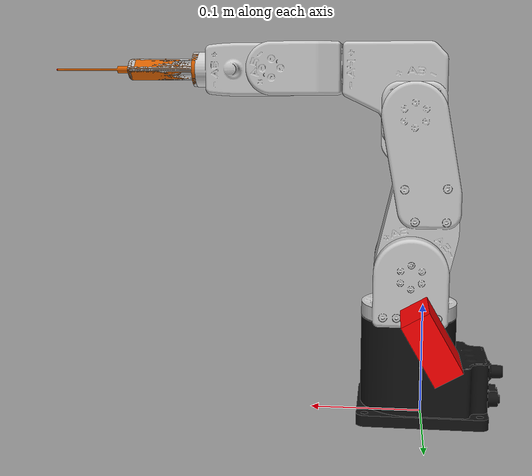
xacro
<?xml version="1.0"?>
<robot name="meca500_robot_tool" xmlns:xacro="http://www.ros.org/wiki/xacro">

  <!-- Existing Meca500 Robot Description and tool -->
  <xacro:include filename="meca_500_r3.urdf.xacro"/>
  <xacro:include filename="camara.xacro"/>

    <!-- Attach the needle_holder to meca_axis_6_joint -->
  <joint name="meca_to_holder" type="fixed">
      <parent link="meca_axis_6_link"/>
      <child link="needle_holder"/>
      <origin xyz="0 0 0" rpy="0 0 0"/>
  </joint>

  <link name="needle_holder">
    <visual>
      <origin rpy="0 0 0" xyz="0 0 0"/>
      <geometry>
        <mesh filename="package://mecademic_description/meshes/dummy_needle_tool.dae"/>
      </geometry>
    </visual>
    <collision>
      <origin rpy="0 0 0" xyz="0 0 0"/>
      <geometry>
        <mesh filename="package://mecademic_description/meshes/dummy_needle_tool.stl"/>
      </geometry>
    </collision>
  </link>

  <joint name="needle_to_tip" type="fixed">
    <parent link="needle_holder"/>
    <child link="needle_tip"/>
    <origin rpy="0 0 0" xyz="0.1284 0 0"/>
  </joint>
  <link name="needle_tip">
    <visual>
      <origin rpy="0 0 0" xyz="0 0 0"/>
      <geometry>
        <sphere radius=".001"/>
      </geometry>
      <material name="red">
            <color rgba="1.0 0.0 0.0 1.0"/>
      </material>
    </visual>
    <collision>
      <origin rpy="0 0 0" xyz="0 0 0"/>
      <geometry>
        <sphere radius=".001"/>
      </geometry>
    </collision>
  </link>

</robot>

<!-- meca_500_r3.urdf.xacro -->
<robot xmlns:xacro="http://www.ros.org/wiki/xacro" name="meca_500_r3">
    <xacro:arg name="initial_positions_file" default="initial_positions.yaml" />

    <!-- Import meca_500_r3 urdf file -->
    <xacro:include filename="$(find mecademic_description)/urdf/meca_500_r3_with_needle.urdf.xacro" />

    <!-- Import control_xacro -->
    <xacro:include filename="meca_500_r3.ros2_control.xacro" />

    <xacro:meca_500_r3_ros2_control name="FakeSystem" initial_positions_file="$(arg initial_positions_file)"/>

</robot>

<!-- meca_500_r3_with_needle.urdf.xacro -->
<robot name="meca_500_r3" xmlns:xacro="http://www.ros.org/wiki/xacro">

  <xacro:property name="holder_len" value="${0.060}"/>
  <xacro:property name="needle_len" value="${0.020}"/>
  <xacro:property name="needle_rad" value="${0.0002}"/>
  <xacro:property name="tcp_offset" value="${holder_len + needle_len}"/>

  <!-- STL in mm? Then use 0.001. If STL is already in meters, use 1 1 1. -->
  <xacro:property name="mesh_scale" value="0.001 0.001 0.001"/>

  <xacro:property name="holder_xyz" value="0 0 0"/>
  <xacro:property name="holder_rpy" value="0 1.57079632679 0"/>

  <!-- Holder mesh path -->
  <xacro:property name="holder_visual_mesh" value="package://mecademic_description/meshes/holder.stl"/>

  <!-- Optional collision mesh -->
  <xacro:property name="holder_collision_mesh" value=""/>

  <!-- ==========================================
       BASE ROBOT
       ========================================== -->

  <!-- Base link is the center of the robot's bottom plate -->
  <link name="meca_base_link">
    <visual>
      <origin xyz="0 0 0" rpy="0 0 0"/>
      <geometry>
        <mesh filename="package://mecademic_description/meshes/meca_500_r3_base.dae"/>
      </geometry>
    </visual>
    <collision>
      <origin xyz="0 0 0" rpy="0 0 0"/>
      <geometry>
        <mesh filename="package://mecademic_description/meshes/meca_500_r3_base_collision.stl"/>
      </geometry>
    </collision>
  </link>

  <!-- Joint 1 -->
  <link name="meca_axis_1_link">
    <visual>
      <origin xyz="0 0 0" rpy="0 0 0"/>
      <geometry>
        <mesh filename="package://mecademic_description/meshes/meca_500_r3_j1.dae"/>
      </geometry>
    </visual>
    <collision>
      <origin xyz="0 0 0" rpy="0 0 0"/>
      <geometry>
        <mesh filename="package://mecademic_description/meshes/meca_500_r3_j1_collision.stl"/>
      </geometry>
    </collision>
  </link>

  <joint name="meca_axis_1_joint" type="revolute">
    <origin xyz="0.012498 0 0.091" rpy="0 0 0"/>
    <parent link="meca_base_link"/>
    <child link="meca_axis_1_link"/>
    <axis xyz="0 0 1"/>
    <limit effort="10.0" velocity="2.61799" lower="-3.05433" upper="3.05433"/>
  </joint>

  <!-- Joint 2 -->
  <link name="meca_axis_2_link">
    <visual>
      <origin xyz="0 0 0" rpy="0 0 0"/>
      <geometry>
        <mesh filename="package://mecademic_description/meshes/meca_500_r3_j2.dae"/>
      </geometry>
    </visual>
    <collision>
      <origin xyz="0 0 0" rpy="0 0 0"/>
      <geometry>
        <mesh filename="package://mecademic_description/meshes/meca_500_r3_j2_collision.stl"/>
      </geometry>
    </collision>
  </link>

  <joint name="meca_axis_2_joint" type="revolute">
    <origin xyz="0 0 0.044" rpy="0 0 0"/>
    <parent link="meca_axis_1_link"/>
    <child link="meca_axis_2_link"/>
    <axis xyz="0 1 0"/>
    <limit effort="10.0" velocity="2.61799" lower="-1.22173048" upper="1.5708"/>
  </joint>

  <!-- Joint 3 -->
  <link name="meca_axis_3_link">
    <visual>
      <origin xyz="0 0 0" rpy="0 0 0"/>
      <geometry>
        <mesh filename="package://mecademic_description/meshes/meca_500_r3_j3.dae"/>
      </geometry>
    </visual>
    <collision>
      <origin xyz="0 0 0" rpy="0 0 0"/>
      <geometry>
        <mesh filename="package://mecademic_description/meshes/meca_500_r3_j3_collision.stl"/>
      </geometry>
    </collision>
  </link>

  <joint name="meca_axis_3_joint" type="revolute">
    <origin xyz="0 0 0.135" rpy="0 0 0"/>
    <parent link="meca_axis_2_link"/>
    <child link="meca_axis_3_link"/>
    <axis xyz="0 1 0"/>
    <limit effort="10.0" velocity="3.14159" lower="-2.35619" upper="1.22173048"/>
  </joint>

  <!-- Joint 4 -->
  <link name="meca_axis_4_link">
    <visual>
      <origin xyz="0 0 0" rpy="0 0 0"/>
      <geometry>
        <mesh filename="package://mecademic_description/meshes/meca_500_r3_j4.dae"/>
      </geometry>
    </visual>
    <collision>
      <origin xyz="0 0 0" rpy="0 0 0"/>
      <geometry>
        <mesh filename="package://mecademic_description/meshes/meca_500_r3_j4_collision.stl"/>
      </geometry>
    </collision>
  </link>

  <joint name="meca_axis_4_joint" type="revolute">
    <origin xyz="0 0 0.038" rpy="0 0 0"/>
    <parent link="meca_axis_3_link"/>
    <child link="meca_axis_4_link"/>
    <axis xyz="1 0 0"/>
    <limit effort="10.0" velocity="5.23599" lower="-2.96706" upper="2.96706"/>
  </joint>

  <!-- Joint 5 -->
  <link name="meca_axis_5_link">
    <visual>
      <origin xyz="0 0 0" rpy="0 0 0"/>
      <geometry>
        <mesh filename="package://mecademic_description/meshes/meca_500_r3_j5.dae"/>
      </geometry>
    </visual>
    <collision>
      <origin xyz="0 0 0" rpy="0 0 0"/>
      <geometry>
        <mesh filename="package://mecademic_description/meshes/meca_500_r3_j5_collision.stl"/>
      </geometry>
    </collision>
  </link>

  <joint name="meca_axis_5_joint" type="revolute">
    <origin xyz="0.12 0 0" rpy="0 0 0"/>
    <parent link="meca_axis_4_link"/>
    <child link="meca_axis_5_link"/>
    <axis xyz="0 1 0"/>
    <limit effort="10.0" velocity="5.23599" lower="-2.00713" upper="2.00713"/>
  </joint>

  <!-- Joint 6 / flange -->
  <link name="meca_axis_6_link">
    <visual>
      <origin xyz="0 0 0" rpy="0 0 0"/>
      <geometry>
        <mesh filename="package://mecademic_description/meshes/meca_500_r3_j6.dae"/>
      </geometry>
    </visual>
    <collision>
      <origin xyz="0 0 0" rpy="0 0 0"/>
      <geometry>
        <mesh filename="package://mecademic_description/meshes/meca_500_r3_j6_collision.stl"/>
      </geometry>
    </collision>
  </link>

  <joint name="meca_axis_6_joint" type="revolute">
    <origin xyz="0.07 0 0" rpy="0 0 0"/>
    <parent link="meca_axis_5_link"/>
    <child link="meca_axis_6_link"/>
    <axis xyz="1 0 0"/>
    <limit effort="10.0" velocity="8.72665" lower="-3.14159" upper="3.14159"/>
  </joint>

  <!-- ==========================================
       HOLDER + NEEDLE + TCP
       ========================================== -->

  <link name="meca_frf_link"/>

  <joint name="meca_frf_fixed" type="fixed">
    <parent link="meca_axis_6_link"/>
    <child link="meca_frf_link"/>
    <origin xyz="0 0 0" rpy="0 0 0"/>
  </joint>

  <!-- Holder link attached to the Meca FRF.
       holder_link +X is the physical approach direction.
       Collision box and inertia are centered at (holder_len/2, 0, 0). -->
  <link name="holder_link">

    <!-- Holder visual mesh.
         If holder.stl was built with +Z as approach, add rpy="0 -1.57079632679 0"
         to the holder_rpy xacro property at the top to fix the visual orientation. -->
    <visual>
      <origin xyz="${holder_xyz}" rpy="${holder_rpy}"/>
      <geometry>
        <mesh filename="${holder_visual_mesh}" scale="${mesh_scale}"/>
      </geometry>
      <material name="holder_gray">
        <color rgba="0.7 0.7 0.7 1.0"/>
      </material>
    </visual>

    <!-- Holder collision: box extending holder_len along +X from the flange. -->
    <collision>
      <origin xyz="${holder_len/2.0} 0 0" rpy="0 0 0"/>
      <geometry>
        <box size="${holder_len} 0.02 0.02"/>
      </geometry>
    </collision>

    <inertial>
      <origin xyz="${holder_len/2.0} 0 0" rpy="0 0 0"/>
      <mass value="0.03"/>
      <inertia ixx="1e-5" ixy="0" ixz="0" iyy="1e-5" iyz="0" izz="1e-5"/>
    </inertial>

  </link>

  <joint name="holder_fixed" type="fixed">
    <parent link="meca_frf_link"/>
    <child link="holder_link"/>
    <origin xyz="0 0 0" rpy="0 0 0"/>
  </joint>

  <link name="tool0_link">

    <visual>
      <origin xyz="0 0 ${needle_len/2.0}" rpy="0 0 0"/>
      <geometry>
        <cylinder length="${needle_len}" radius="${needle_rad}"/>
      </geometry>
      <material name="needle_steel">
        <color rgba="0.75 0.75 0.8 1.0"/>
      </material>
    </visual>

    <collision>
      <origin xyz="0 0 ${needle_len/2.0}" rpy="0 0 0"/>
      <geometry>
        <!-- Slightly enlarged collision radius for safer planning -->
        <cylinder length="${needle_len}" radius="${needle_rad*1.3}"/>
      </geometry>
    </collision>

    <inertial>
      <origin xyz="0 0 ${needle_len/2.0}" rpy="0 0 0"/>
      <mass value="0.005"/>
      <inertia ixx="1e-7" ixy="0" ixz="0" iyy="1e-7" iyz="0" izz="1e-7"/>
    </inertial>

  </link>

  <joint name="needle_fixed" type="fixed">
    <parent link="holder_link"/>
    <child link="tool0_link"/>
    <origin xyz="${holder_len} 0 0" rpy="0 1.57079632679 0"/>
  </joint>

  <link name="tcp_link"/>

  <joint name="tcp_fixed" type="fixed">
    <parent link="tool0_link"/>
    <child link="tcp_link"/>
    <!-- xyz: needle_len (20 mm) along tool0_link +Z (= approach direction).
         rpy: Ry(-90°) restores tcp_link frame to match meca_axis_6_link (+X = approach). -->
    <origin xyz="0 0 ${needle_len}" rpy="0 -1.57079632679 0"/>
  </joint>

</robot>

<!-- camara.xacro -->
<robot xmlns:xacro="http://www.ros.org/wiki/xacro" >

    <joint name="camera_joint" type="fixed">
        <parent link="meca_base_link"/>
        <child link="camera_link"/>
        <origin xyz="0 0.15 0.11" rpy="0 ${pi/6} 0"/>
    </joint>

    <link name="camera_link">
        <visual>
            <geometry>
                <box size="0.023 0.05 0.05"/>
            </geometry>
            <material name="red"/>
        </visual>
        <collision>
            <origin rpy="0 0 0" xyz="0 0 0"/>
            <geometry>
                <box size="0.023 0.05 0.05"/>
            </geometry>
        </collision>
    </link>

    <joint name="camera_optical_joint" type="fixed">
        <parent link="camera_link"/>
        <child link="camera_link_optical"/>
        <origin xyz="0 0 0" rpy="${-pi/2} 0 ${-pi/2}"/>
    </joint>

    <link name="camera_link_optical"></link>

    <gazebo reference="camera_link">
        <material>Gazebo/Red</material>

        <sensor name="camera" type="camera">
            <pose> 0 0 0 0 0 0 </pose>
            <visualize>true</visualize>
            <update_rate>10</update_rate>
            <camera>
                <horizontal_fov>1.089</horizontal_fov>
                <image>
                    <format>R8G8B8</format>
                    <width>640</width>
                    <height>480</height>
                </image>
                <clip>
                    <near>0.05</near>
                    <far>8.0</far>
                </clip>
            </camera>
            <plugin name="camera_controller" filename="libgazebo_ros_camera.so">
                <frame_name>camera_link_optical</frame_name>
            </plugin>
        </sensor>
    </gazebo>

</robot>
